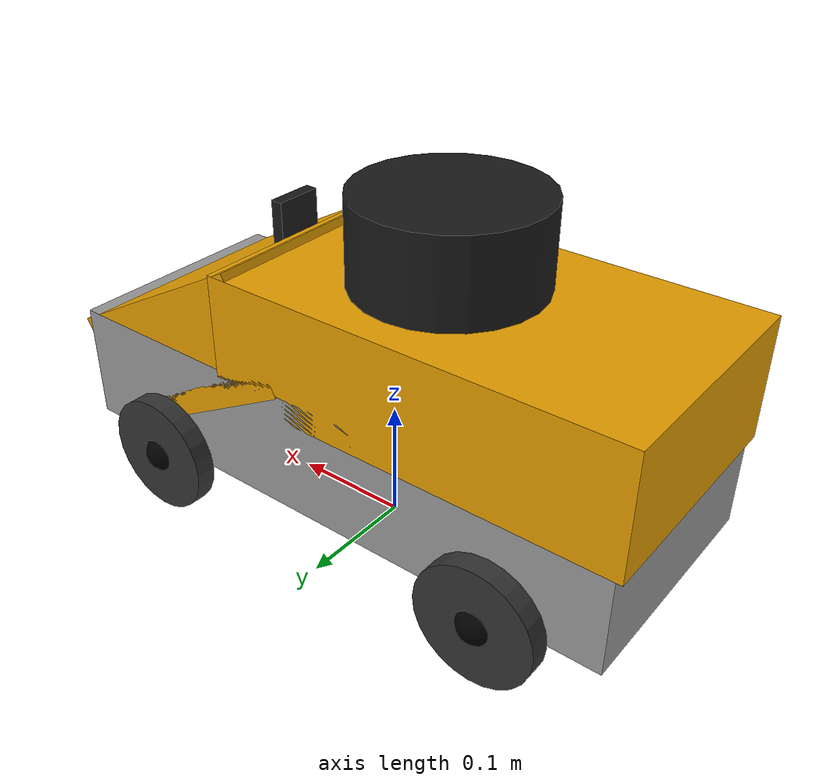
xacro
<?xml version="1.0"?>
<robot name="mrobot" xmlns:xacro="http://www.ros.org/wiki/xacro">

    <xacro:include filename="$(find mrobot_description)/urdf/fw.urdf.xacro" />
    <xacro:include filename="$(find mrobot_description)/urdf/camera.xacro" />

    <xacro:property name="camera_offset_x" value="0.1" />
    <xacro:property name="camera_offset_y" value="0" />
    <xacro:property name="camera_offset_z" value="0.24" />

    <!-- MRobot机器人平台-->
    <xacro:fw/>

    <!-- Camera -->
    <joint name="camera_joint" type="fixed">
        <origin xyz="${camera_offset_x} ${camera_offset_y} ${camera_offset_z}" rpy="0 0 0" />
        <parent link="base_link"/>
        <child link="camera_link"/>
    </joint>

    <xacro:usb_camera prefix="camera"/>

</robot>

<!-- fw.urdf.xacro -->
<robot name="fw" xmlns:xacro="http://www.ros.org/wiki/xacro">

    <xacro:macro name="fw">
        <link name="base_link">
            <visual>
                <geometry>
                    <box size="0.5 0.2 0.1" />
                </geometry>
                <origin xyz="0 0 0.1" rpy="0 0 0" />
                <material name="white">
                    <color rgba="0.6 0.6 0.6 1"/>
                </material>
            </visual>
            <visual>
                <geometry>
                    <box size="0.2 0.2 0.1" />
                </geometry>
                <origin xyz="0.144 0 0.144" rpy="0 0.5 0" />

            </visual>
            <visual>
                <geometry>
                    <box size="0.35 0.2 0.1" />
                </geometry>
                <origin xyz="-0.08 0 0.18" rpy="0 0 0" />

            </visual>
            <visual>
                <!-- 此处的origin的xyz是指相对于base而言的， -->
                <origin xyz=" -0.05 0 0.25" rpy="0 0 0" />
                <geometry>
                    <cylinder length="0.1" radius="0.075"/>
                </geometry>
                <material name="black">
                    <color rgba="0.1 0.1 0.1 1"/>
                </material>
            </visual>
        </link>

        <joint name="base_left_motor_joint" type="fixed">
            <origin xyz="-0.16 -0.11 0.05" rpy="0 0 0" />
            <parent link="base_link"/>
            <child link="left_f_motor"/>
        </joint>

        <link name="left_f_motor">
            <visual>
                <origin xyz="0 0 0" rpy="1.5707 0 0"/>
                <geometry>
                    <sphere radius="0.0165" />
                </geometry>
                <material name="black">
                    <color rgba="0 0 0 0.95"/>
                </material>
            </visual>
        </link>

        <joint name="base_right_motor_joint" type="fixed">
            <origin xyz="-0.16 0.11 0.05" rpy="0 0 0" />
            <parent link="base_link"/>
            <child link="right_f_motor"/>
        </joint>

        <link name="right_f_motor">
            <visual>
                <origin xyz="0 0 0" rpy="1.5707 0 0"/>
                <geometry>
                    <sphere radius="0.0165" />
                </geometry>
                <material name="black">
                    <color rgba="0 0 0 0.95"/>
                </material>
            </visual>
        </link>

        <joint name="base_right_b_motor_joint" type="fixed">
            <origin xyz="0.16 0.11 0.05" rpy="0 0 0" />
            <parent link="base_link"/>
            <child link="right_b_f_motor"/>
        </joint>

        <link name="right_b_f_motor">
            <visual>
                <origin xyz="0 0 0 " rpy="1.5707 0 0"/>
                <geometry>
                    <sphere radius="0.0165" />
                </geometry>
                <material name="black">
                    <color rgba="0 0 0 0.95"/>
                </material>
            </visual>
        </link>

        <joint name="base_left_b_motor_joint" type="fixed">
            <origin xyz="0.16 -0.11 0.05" rpy="0 0 0" />
            <parent link="base_link"/>
            <child link="left_b_f_motor"/>
        </joint>

        <link name="left_b_f_motor">
            <visual>
                <origin xyz="0 0 0" rpy="1.5707 0 0"/>
                <geometry>
                    <sphere radius="0.0165" />
                </geometry>
                <material name="black">
                    <color rgba="0 0 0 0.95"/>
                </material>
            </visual>
        </link>

        <joint name="left_wheel_joint" type="continuous">
            <origin xyz="0 0 0" rpy="0 0 0"/>
            <parent link="left_f_motor"/>
            <child link="left_wheel_link"/>
            <axis xyz="0 1 0"/>
        </joint>

        <link name="left_wheel_link">
            <visual>
                <origin xyz="0 0 0" rpy="1.5707 0 0" />
                <geometry>
                    <cylinder radius="0.05" length = "0.017"/>
                </geometry>
                <material name="grey">
                    <color rgba="0.2 0.2 0.2 1"/>
                </material>
            </visual>
        </link>

        <joint name="right_wheel_joint" type="continuous">
            <origin xyz="0 0 0" rpy="0 0 0"/>
            <parent link="right_f_motor"/>
            <child link="right_wheel_link"/>
            <axis xyz="0 1 0"/>

        </joint>

        <link name="right_wheel_link">
            <visual>
                <origin xyz="0 0 0" rpy="1.5707 0 0" />
                <geometry>
                    <cylinder radius="0.05" length = "0.017"/>
                </geometry>
                <material name="grey">
                    <color rgba="0.2 0.2 0.2 1"/>
                </material>
            </visual>
        </link>

        <joint name="b_right_wheel_joint" type="continuous">
            <origin xyz="0 0 0 " rpy="0 0 0"/>
            <parent link="right_b_f_motor"/>
            <child link="b_right_wheel_link"/>
            <axis xyz="0 1 0"/>
        </joint>

        <link name="b_right_wheel_link">
            <visual>
                <origin xyz="0 0 0" rpy="1.5707 0 0" />
                <geometry>
                    <cylinder radius="0.05" length = "0.017"/>
                </geometry>
                <material name="grey">
                    <color rgba="0.2 0.2 0.2 1"/>
                </material>
            </visual>
        </link>

        <joint name="b_left_wheel_joint" type="continuous">
            <origin xyz="0 0 0" rpy="0 0 0"/>
            <parent link="left_b_f_motor"/>
            <child link="b_left_wheel_link"/>
            <axis xyz="0 1 0"/>
        </joint>

        <link name="b_left_wheel_link">
            <visual>
                <origin xyz="0 0 0" rpy="1.5707 0 0" />
                <geometry>
                    <cylinder radius="0.05" length = "0.017"/>
                </geometry>
                <material name="grey">
                    <color rgba="0.2 0.2 0.2 1"/>
                </material>
            </visual>
        </link>
    </xacro:macro>
</robot>

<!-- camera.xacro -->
<robot xmlns:xacro="http://www.ros.org/wiki/xacro" name="camera">

    <xacro:macro name="usb_camera" params="prefix:=camera">
        <link name="${prefix}_link">
            <inertial>
                <mass value="0.1" />
                <origin xyz="0 0 0" />
                <inertia ixx="0.01" ixy="0.0" ixz="0.0"
                         iyy="0.01" iyz="0.0"
                         izz="0.01" />
            </inertial>

            <visual>
                <origin xyz=" 0 0 0 " rpy="0 0 0" />
                <geometry>
                    <box size="0.01 0.04 0.04" />
                </geometry>
                <material name="black"/>
            </visual>

            <collision>
                <origin xyz="0.0 0.0 0.0" rpy="0 0 0" />
                <geometry>
                    <box size="0.01 0.04 0.04" />
                </geometry>
            </collision>
        </link>
    </xacro:macro>

</robot>
